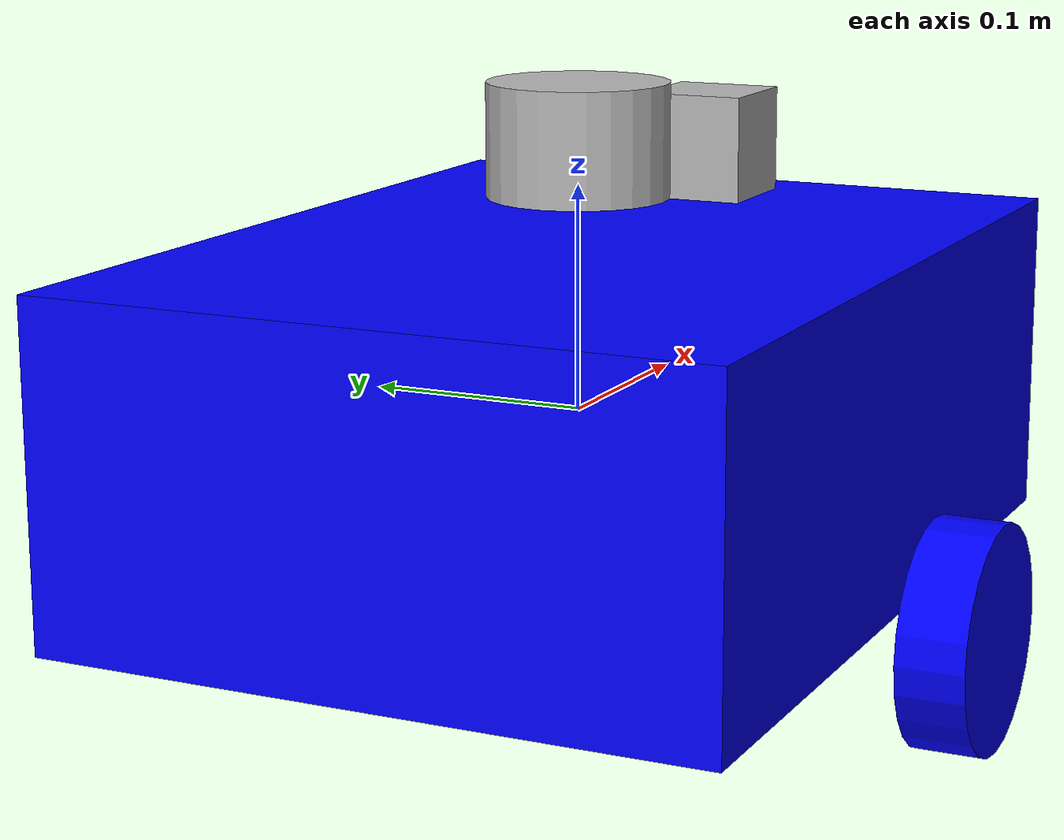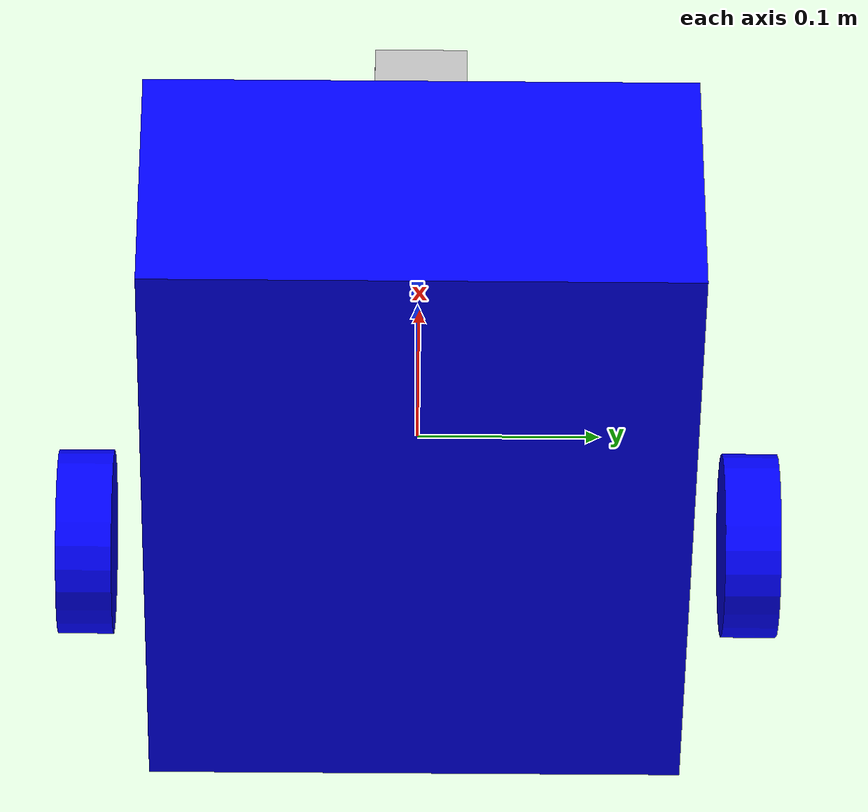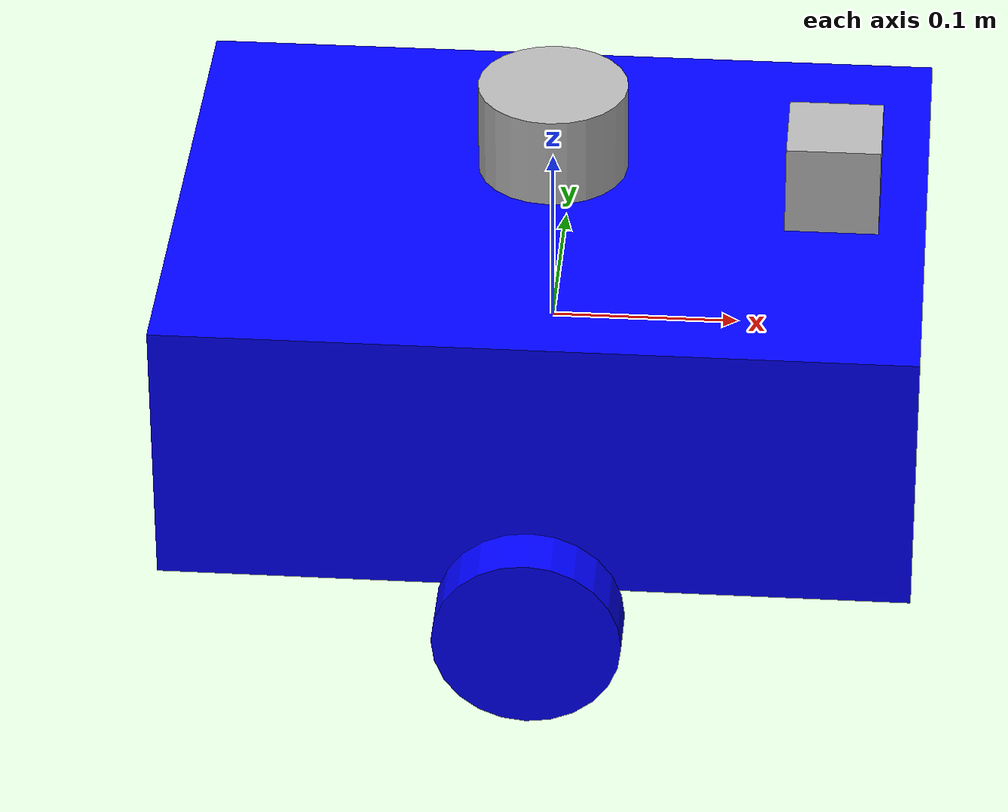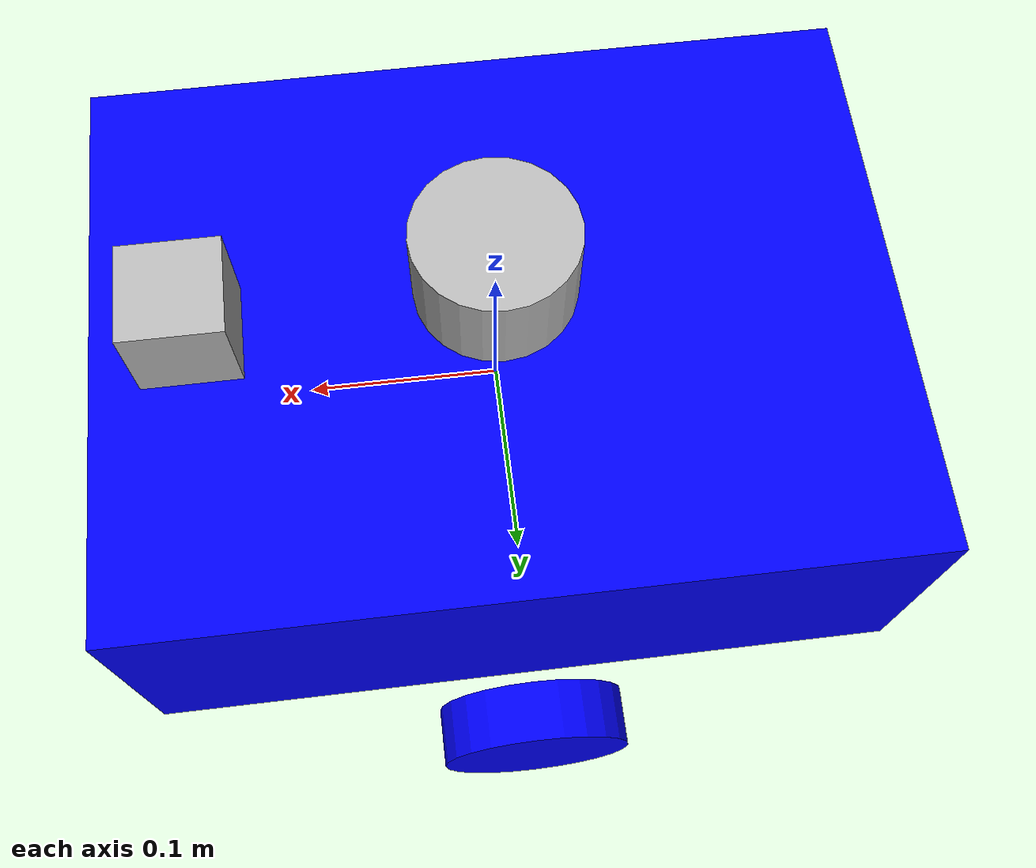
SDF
<?xml version="1.0"?>
<sdf version="1.8">
  <model name="firebot">

    <link name="base_link">
      <pose>0 0 0 0 0 0</pose>

      <inertial>
        <mass>5.0</mass>
        <inertia>
          <ixx>0.1</ixx>
          <iyy>0.1</iyy>
          <izz>0.1</izz>
          <ixy>0.0</ixy>
          <ixz>0.0</ixz>
          <iyz>0.0</iyz>
        </inertia>
      </inertial>

      <visual name="visual">
        <geometry>
          <box>
            <size>0.4 0.3 0.15</size>
          </box>
        </geometry>
        <material>
          <ambient>0 0 1 1</ambient>
          <diffuse>0 0 1 1</diffuse>
        </material>
      </visual>

      <collision name="collision">
        <geometry>
          <box>
            <size>0.4 0.3 0.15</size>
          </box>
        </geometry>
      </collision>
    </link>

    <link name="left_wheel">
      <pose>0 0.18 -0.08 1.5708 0 0</pose>

      <inertial>
        <mass>0.5</mass>
        <inertia>
          <ixx>0.001</ixx>
          <iyy>0.001</iyy>
          <izz>0.001</izz>
          <ixy>0.0</ixy>
          <ixz>0.0</ixz>
          <iyz>0.0</iyz>
        </inertia>
      </inertial>

      <visual name="visual">
        <geometry>
          <cylinder>
            <radius>0.05</radius>
            <length>0.03</length>
          </cylinder>
        </geometry>
        <material>
          <ambient>0 0 1 1</ambient>
          <diffuse>0 0 1 1</diffuse>
        </material>
      </visual>

      <collision name="collision">
        <geometry>
          <cylinder>
            <radius>0.05</radius>
            <length>0.03</length>
          </cylinder>
        </geometry>
      </collision>
    </link>

    <joint name="left_wheel_joint" type="revolute">
      <parent>base_link</parent>
      <child>left_wheel</child>
      <axis>
        <xyz>0 1 0</xyz>
        <limit>
          <lower>-3.14159</lower>
          <upper>3.14159</upper>
          <effort>10</effort>
          <velocity>20</velocity>
        </limit>
      </axis>
    </joint>

    <link name="right_wheel">
      <pose>0 -0.18 -0.08 1.5708 0 0</pose>

      <inertial>
        <mass>0.5</mass>
        <inertia>
          <ixx>0.001</ixx>
          <iyy>0.001</iyy>
          <izz>0.001</izz>
          <ixy>0.0</ixy>
          <ixz>0.0</ixz>
          <iyz>0.0</iyz>
        </inertia>
      </inertial>

      <visual name="visual">
        <geometry>
          <cylinder>
            <radius>0.05</radius>
            <length>0.03</length>
          </cylinder>
        </geometry>
        <material>
          <ambient>0 0 1 1</ambient>
          <diffuse>0 0 1 1</diffuse>
        </material>
      </visual>

      <collision name="collision">
        <geometry>
          <cylinder>
            <radius>0.05</radius>
            <length>0.03</length>
          </cylinder>
        </geometry>
      </collision>
    </link>

    <joint name="right_wheel_joint" type="revolute">
      <parent>base_link</parent>
      <child>right_wheel</child>
      <axis>
        <xyz>0 1 0</xyz>
        <limit>
          <lower>-3.14159</lower>
          <upper>3.14159</upper>
          <effort>10</effort>
          <velocity>20</velocity>
        </limit>
      </axis>
    </joint>

    <link name="lidar_link">
      <pose>0 0 0.12 0 0 0</pose>

      <inertial>
        <mass>0.1</mass>
        <inertia>
          <ixx>0.0001</ixx>
          <iyy>0.0001</iyy>
          <izz>0.0001</izz>
          <ixy>0.0</ixy>
          <ixz>0.0</ixz>
          <iyz>0.0</iyz>
        </inertia>
      </inertial>

      <visual name="visual">
        <geometry>
          <cylinder>
            <radius>0.04</radius>
            <length>0.05</length>
          </cylinder>
        </geometry>
      </visual>

      <collision name="collision">
        <geometry>
          <cylinder>
            <radius>0.04</radius>
            <length>0.05</length>
          </cylinder>
        </geometry>
      </collision>

      <sensor name="lidar_sensor" type="gpu_lidar">
        <pose>0 0 0 0 0 0</pose>
        <topic>scan</topic>
        <update_rate>10</update_rate>
        <lidar>
          <scan>
            <horizontal>
              <samples>360</samples>
              <resolution>1</resolution>
              <min_angle>-3.14159</min_angle>
              <max_angle>3.14159</max_angle>
            </horizontal>
          </scan>
          <range>
            <min>0.1</min>
            <max>10.0</max>
            <resolution>0.01</resolution>
          </range>
        </lidar>
        <always_on>true</always_on>
        <visualize>true</visualize>
      </sensor>
    </link>

    <joint name="lidar_joint" type="fixed">
      <parent>base_link</parent>
      <child>lidar_link</child>
    </joint>

    <link name="camera_link">
      <pose>0.15 0 0.10 0 0 0</pose>

      <inertial>
        <mass>0.05</mass>
        <inertia>
          <ixx>0.00001</ixx>
          <iyy>0.00001</iyy>
          <izz>0.00001</izz>
          <ixy>0.0</ixy>
          <ixz>0.0</ixz>
          <iyz>0.0</iyz>
        </inertia>
      </inertial>

      <visual name="visual">
        <geometry>
          <box>
            <size>0.05 0.05 0.05</size>
          </box>
        </geometry>
      </visual>

      <collision name="collision">
        <geometry>
          <box>
            <size>0.05 0.05 0.05</size>
          </box>
        </geometry>
      </collision>

      <sensor name="camera" type="camera">
        <pose>0 0 0 0 0 0</pose>
        <camera>
          <horizontal_fov>1.047</horizontal_fov>
          <image>
            <width>640</width>
            <height>480</height>
            <format>R8G8B8</format>
          </image>
          <clip>
            <near>0.1</near>
            <far>10</far>
          </clip>
        </camera>
        <always_on>true</always_on>
        <update_rate>30</update_rate>
        <visualize>true</visualize>
        <topic>camera</topic>
      </sensor>
    </link>

    <joint name="camera_joint" type="fixed">
      <parent>base_link</parent>
      <child>camera_link</child>
    </joint>

    <plugin
        filename="gz-sim-diff-drive-system"
        name="gz::sim::systems::DiffDrive">
      <left_joint>left_wheel_joint</left_joint>
      <right_joint>right_wheel_joint</right_joint>
      <wheel_separation>0.36</wheel_separation>
      <wheel_radius>0.05</wheel_radius>
      <topic>cmd_vel</topic>
      <odom_publish_frequency>50</odom_publish_frequency>
    </plugin>

  </model>
</sdf>
